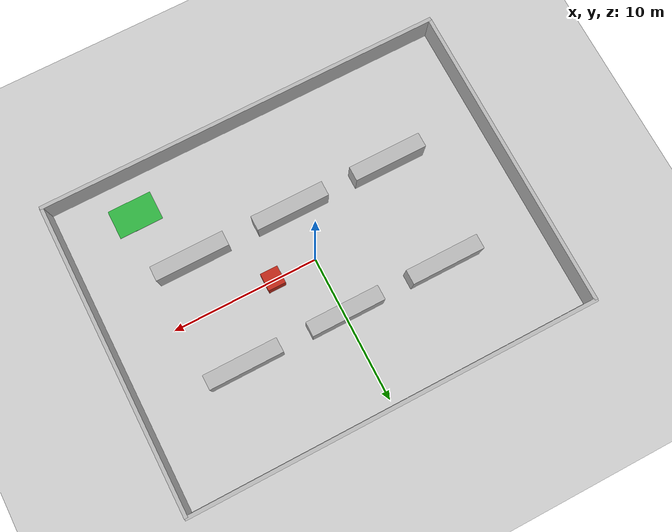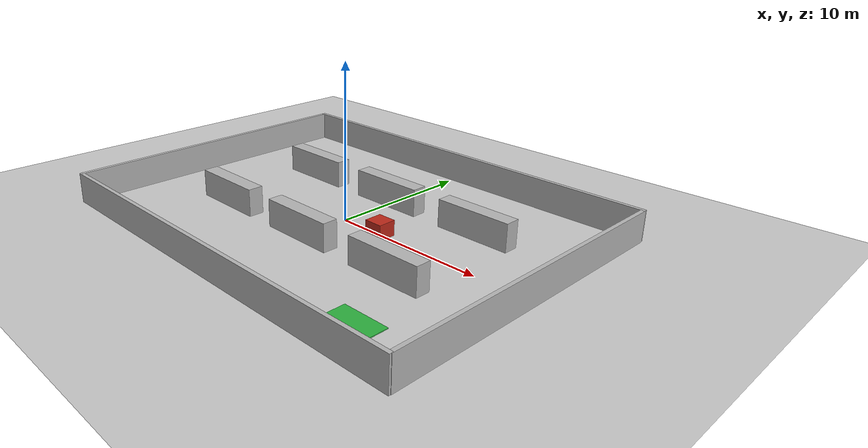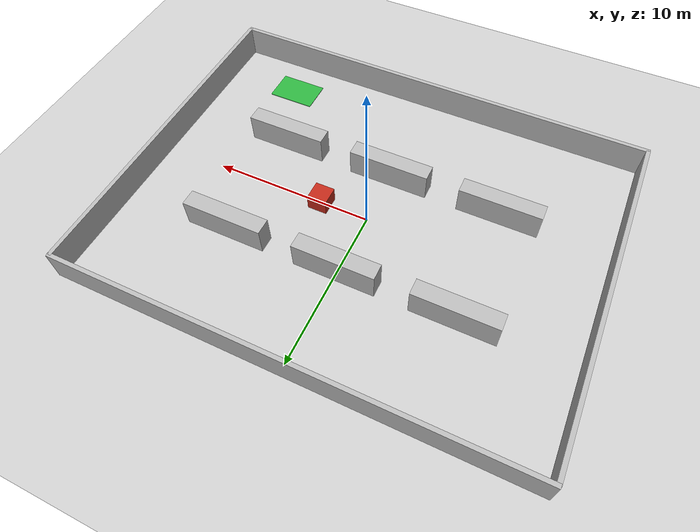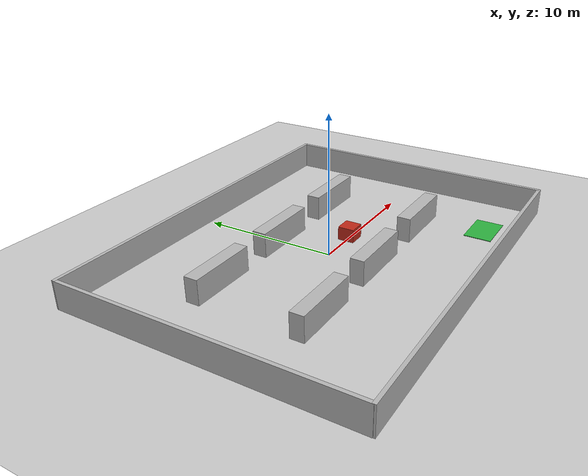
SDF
<?xml version="1.0"?>
<sdf version="1.9">
  <world name="warehouse">
    <physics name="physics" type="ignored"><max_step_size>0.001</max_step_size><real_time_factor>1.0</real_time_factor></physics>
    <plugin filename="gz-sim-physics-system" name="gz::sim::systems::Physics"/>
    <plugin filename="gz-sim-user-commands-system" name="gz::sim::systems::UserCommands"/>
    <plugin filename="gz-sim-scene-broadcaster-system" name="gz::sim::systems::SceneBroadcaster"/>
    <plugin filename="gz-sim-sensors-system" name="gz::sim::systems::Sensors"><render_engine>ogre2</render_engine></plugin>
    <gravity>0 0 -9.8</gravity>
    <light type="directional" name="sun"><cast_shadows>true</cast_shadows><pose>0 0 10 0 0 0</pose><diffuse>0.8 0.8 0.8 1</diffuse><specular>0.2 0.2 0.2 1</specular><direction>-0.5 0.1 -0.9</direction></light>

    <model name="ground_plane"><static>true</static><link name="link"><collision name="collision"><geometry><plane><normal>0 0 1</normal><size>30 22</size></plane></geometry></collision><visual name="visual"><geometry><plane><normal>0 0 1</normal><size>30 22</size></plane></geometry></visual></link></model>
    <model name="wall_north"><static>true</static><pose>0 10.5 1 0 0 0</pose><link name="link"><collision name="c"><geometry><box><size>28 0.25 2</size></box></geometry></collision><visual name="v"><geometry><box><size>28 0.25 2</size></box></geometry></visual></link></model>
    <model name="wall_south"><static>true</static><pose>0 -10.5 1 0 0 0</pose><link name="link"><collision name="c"><geometry><box><size>28 0.25 2</size></box></geometry></collision><visual name="v"><geometry><box><size>28 0.25 2</size></box></geometry></visual></link></model>
    <model name="wall_east"><static>true</static><pose>13.9 0 1 0 0 0</pose><link name="link"><collision name="c"><geometry><box><size>0.25 21 2</size></box></geometry></collision><visual name="v"><geometry><box><size>0.25 21 2</size></box></geometry></visual></link></model>
    <model name="wall_west"><static>true</static><pose>-13.9 0 1 0 0 0</pose><link name="link"><collision name="c"><geometry><box><size>0.25 21 2</size></box></geometry></collision><visual name="v"><geometry><box><size>0.25 21 2</size></box></geometry></visual></link></model>

    <model name="rack_a"><static>true</static><pose>-7 4 0.9 0 0 0</pose><link name="link"><collision name="c"><geometry><box><size>5 1 1.8</size></box></geometry></collision><visual name="v"><geometry><box><size>5 1 1.8</size></box></geometry></visual></link></model>
    <model name="rack_b"><static>true</static><pose>0 4 0.9 0 0 0</pose><link name="link"><collision name="c"><geometry><box><size>5 1 1.8</size></box></geometry></collision><visual name="v"><geometry><box><size>5 1 1.8</size></box></geometry></visual></link></model>
    <model name="rack_c"><static>true</static><pose>7 4 0.9 0 0 0</pose><link name="link"><collision name="c"><geometry><box><size>5 1 1.8</size></box></geometry></collision><visual name="v"><geometry><box><size>5 1 1.8</size></box></geometry></visual></link></model>
    <model name="rack_d"><static>true</static><pose>-7 -3.5 0.9 0 0 0</pose><link name="link"><collision name="c"><geometry><box><size>5 1 1.8</size></box></geometry></collision><visual name="v"><geometry><box><size>5 1 1.8</size></box></geometry></visual></link></model>
    <model name="rack_e"><static>true</static><pose>0 -3.5 0.9 0 0 0</pose><link name="link"><collision name="c"><geometry><box><size>5 1 1.8</size></box></geometry></collision><visual name="v"><geometry><box><size>5 1 1.8</size></box></geometry></visual></link></model>
    <model name="rack_f"><static>true</static><pose>7 -3.5 0.9 0 0 0</pose><link name="link"><collision name="c"><geometry><box><size>5 1 1.8</size></box></geometry></collision><visual name="v"><geometry><box><size>5 1 1.8</size></box></geometry></visual></link></model>

    <!-- Visible obstacle placed in the centre aisle so Nav2/LiDAR avoidance is
         obvious during missions to the right-side racks. -->
    <model name="demo_obstacle_crate">
      <static>true</static>
      <pose>3 0 0.5 0 0 0</pose>
      <link name="link">
        <collision name="c"><geometry><box><size>1.2 1.2 1.0</size></box></geometry></collision>
        <visual name="v">
          <geometry><box><size>1.2 1.2 1.0</size></box></geometry>
          <material><ambient>0.65 0.12 0.08 1</ambient><diffuse>0.75 0.16 0.10 1</diffuse></material>
        </visual>
      </link>
    </model>

    <model name="packing_zone_marker"><static>true</static><pose>9 -8 0.025 0 0 0</pose><link name="link"><visual name="v"><geometry><box><size>3 2 0.05</size></box></geometry><material><ambient>0.15 0.55 0.20 1</ambient><diffuse>0.18 0.70 0.25 1</diffuse></material></visual></link></model>
  </world>
</sdf>
